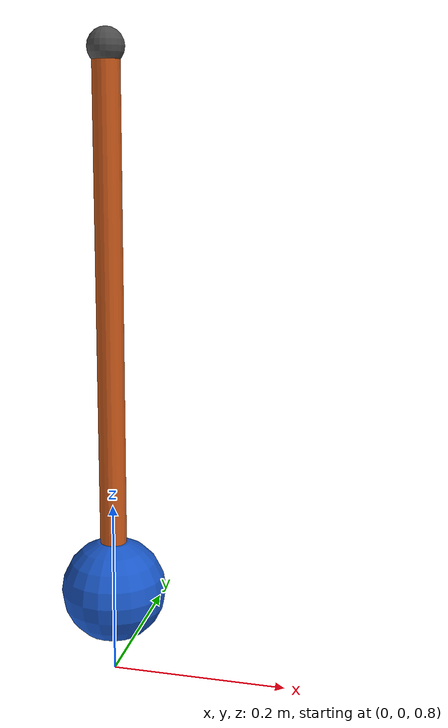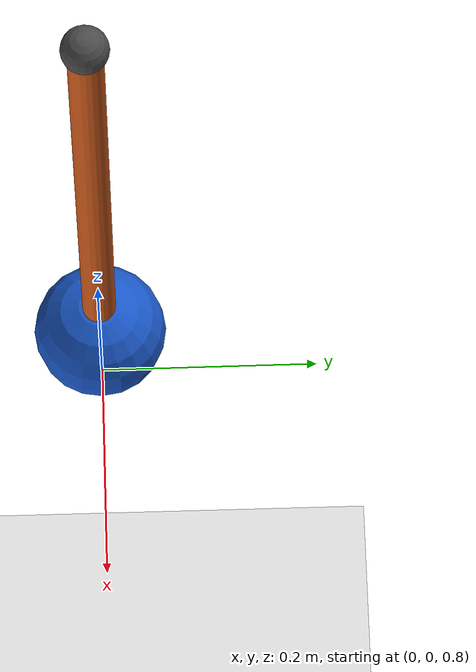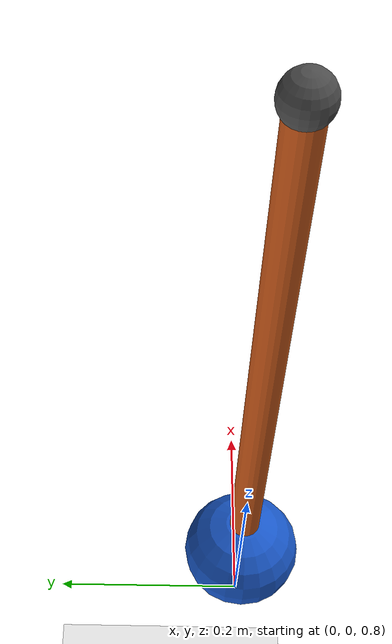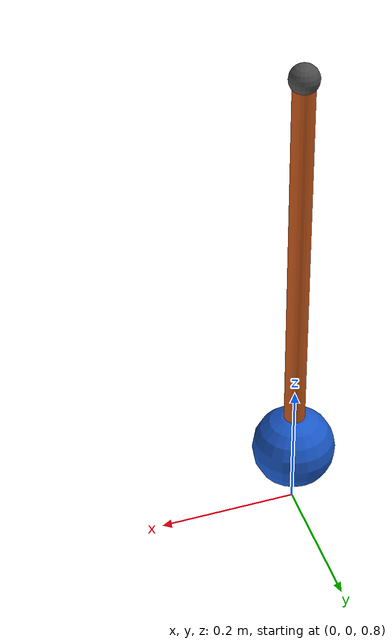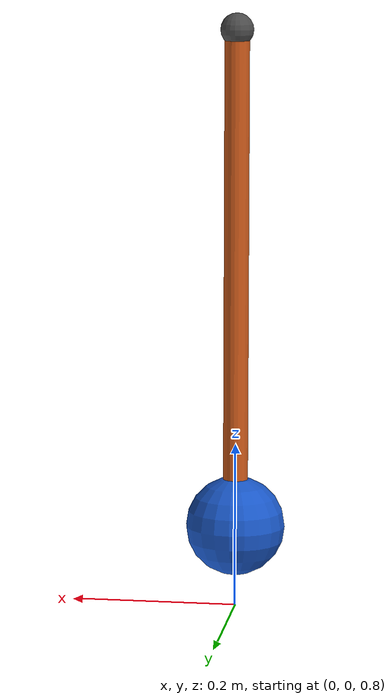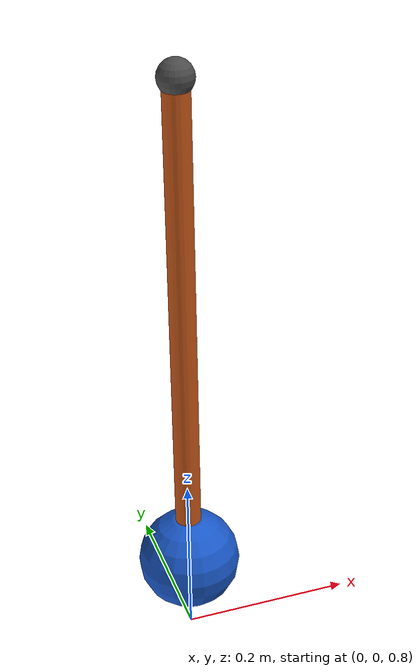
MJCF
<!-- Damped pendulum. Starts displaced 90° so it swings on launch and
     visibly settles over ~30s of sim time — which is exactly what the
     observers.yaml motion classes (swinging → settled) track. -->
<mujoco model="pendulum">
  <option timestep="0.002" gravity="0 0 -9.81"/>

  <worldbody>
    <light pos="0 -1 2" dir="0 0.5 -1"/>
    <geom name="floor" type="plane" size="2 2 0.1" rgba="0.9 0.9 0.9 1"/>

    <body name="anchor" pos="0 0 1.5">
      <geom type="sphere" size="0.02" rgba="0.3 0.3 0.3 1"/>
      <body name="rod" pos="0 0 0">
        <!-- The joint the bridge publishes and observers.yaml watches. -->
        <joint name="swing" type="hinge" axis="0 1 0" damping="0.15"/>
        <geom type="capsule" fromto="0 0 0  0 0 -0.6" size="0.015"
              rgba="0.8 0.35 0.1 1" mass="0.1"/>
        <body name="bob" pos="0 0 -0.6">
          <geom type="sphere" size="0.06" rgba="0.1 0.35 0.8 1" mass="0.5"/>
        </body>
      </body>
    </body>
  </worldbody>

  <keyframe>
    <!-- qpos in radians: start at 90° so there's motion to observe. -->
    <key name="displaced" qpos="1.5708"/>
  </keyframe>
</mujoco>
